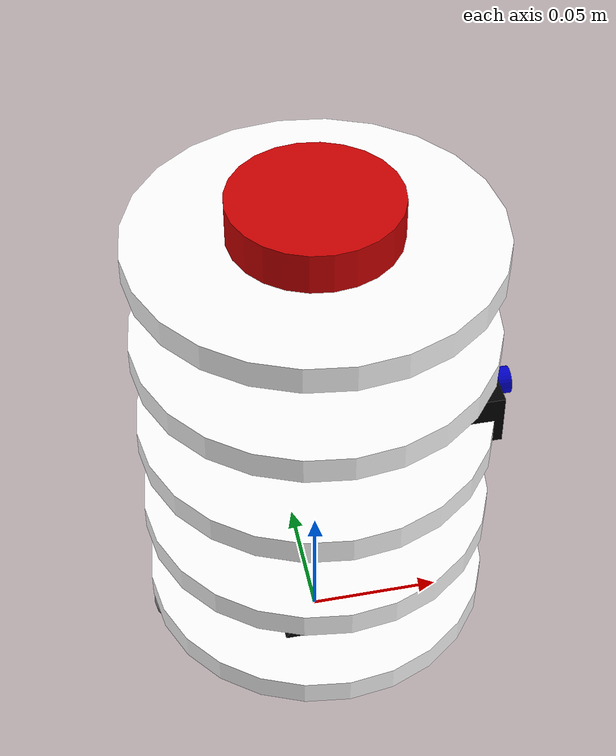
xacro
<?xml version="1.0"?>
<robot name="bumpy7_robot" xmlns:xacro="http://ros.org/wiki/xacro">
  <!-- Add namespace parameter with default -->
  <xacro:arg name="namespace" default="bumpy7"/>
  <xacro:property name="ns" value="$(arg namespace)"/>

  <!-- Properties -->
  <xacro:property name="wheel_radius" value="0.022"/>
  <xacro:property name="wheel_length" value="0.01"/>
  <xacro:property name="wheel_separation" value="0.07"/>
  <xacro:property name="plate_radius" value="0.065"/>
  <xacro:property name="plate_height" value="0.01"/>
  <xacro:property name="plate_spacing" value="0.04"/>
  <xacro:property name="caster_radius" value="0.01"/>

  <!-- Materials for visualization -->
  <material name="white">
    <color rgba="1 1 1 1"/>
  </material>
  <material name="black">
    <color rgba="0 0 0 1"/>
  </material>
  <material name="gray">
    <color rgba="0.5 0.5 0.5 1"/>
  </material>
  <material name="red">
    <color rgba="0.8 0 0 1"/>
  </material>
  <material name="blue">
    <color rgba="0 0 0.8 1"/>
  </material>

  <!-- Wheel macro -->
  <xacro:macro name="wheel" params="prefix reflect">
    <link name="${ns}/${prefix}_wheel">
      <visual>
        <geometry>
          <cylinder length="${wheel_length}" radius="${wheel_radius}"/>
        </geometry>
        <material name="black"/>
        <origin xyz="0 0 0" rpy="${pi/2} 0 0"/>
      </visual>
      <collision>
        <geometry>
          <cylinder length="${wheel_length}" radius="${wheel_radius}"/>
        </geometry>
        <origin xyz="0 0 0" rpy="${pi/2} 0 0"/>
      </collision>
      <inertial>
        <mass value="0.1"/>
        <inertia ixx="0.00003" ixy="0" ixz="0" iyy="0.00003" iyz="0" izz="0.00005"/>
      </inertial>
    </link>

    <joint name="${ns}/${prefix}_wheel_joint" type="continuous">
      <parent link="${ns}/base_link"/>
      <child link="${ns}/${prefix}_wheel"/>
      <origin xyz="0 ${reflect * wheel_separation/2} -0.005" rpy="0 0 0"/>
      <axis xyz="0 1 0"/>
    </joint>
  </xacro:macro>

  <!-- Caster wheel macro -->
  <xacro:macro name="caster" params="prefix position_x">
    <link name="${ns}/${prefix}_caster">
      <visual>
        <geometry>
          <sphere radius="${caster_radius}"/>
        </geometry>
        <material name="gray"/>
      </visual>
      <collision>
        <geometry>
          <sphere radius="${caster_radius}"/>
        </geometry>
      </collision>
      <inertial>
        <mass value="0.05"/>
        <inertia ixx="0.000002" ixy="0" ixz="0" iyy="0.000002" iyz="0" izz="0.000002"/>
      </inertial>
    </link>

    <joint name="${ns}/${prefix}_caster_joint" type="fixed">
      <parent link="${ns}/base_link"/>
      <child link="${ns}/${prefix}_caster"/>
      <origin xyz="${position_x} 0 -0.01" rpy="0 0 0"/>
    </joint>
  </xacro:macro>

  <!-- Plate macro -->
  <xacro:macro name="plate" params="number parent offset">
    <link name="${ns}/plate_${number}">
      <visual>
        <geometry>
          <cylinder length="${plate_height}" radius="${plate_radius}"/>
        </geometry>
        <material name="white"/>
      </visual>
      <collision>
        <geometry>
          <cylinder length="${plate_height}" radius="${plate_radius}"/>
        </geometry>
      </collision>
      <inertial>
        <mass value="0.3"/>
        <inertia ixx="0.0006" ixy="0" ixz="0" iyy="0.0006" iyz="0" izz="0.0012"/>
      </inertial>
    </link>

    <joint name="${ns}/plate_${number}_joint" type="fixed">
      <parent link="${parent}"/>
      <child link="${ns}/plate_${number}"/>
      <origin xyz="0 0 ${offset}" rpy="0 0 0"/>
    </joint>
  </xacro:macro>

  <!-- Base Footprint -->
  <link name="${ns}/base_footprint">
    <visual>
      <geometry>
        <box size="0.001 0.001 0.001"/>
      </geometry>
      <material name="black"/>
    </visual>
    <collision>
      <geometry>
        <box size="0.001 0.001 0.001"/>
      </geometry>
    </collision>
    <inertial>
      <mass value="0.0001"/>
      <inertia ixx="0.0000001" ixy="0" ixz="0" iyy="0.0000001" iyz="0" izz="0.0000001"/>
    </inertial>
  </link>

  <joint name="${ns}/base_joint" type="fixed">
    <parent link="${ns}/base_footprint"/>
    <child link="${ns}/base_link"/>
    <origin xyz="0 0 ${wheel_radius + 0.005}" rpy="0 0 0"/>
  </joint>

  <!-- Base plate (Bottom "bun") -->
  <link name="${ns}/base_link">
    <visual>
      <geometry>
        <cylinder length="${plate_height}" radius="${plate_radius}"/>
      </geometry>
      <material name="white"/>
    </visual>
    <collision>
      <geometry>
        <cylinder length="${plate_height}" radius="${plate_radius}"/>
      </geometry>
    </collision>
    <inertial>
      <mass value="0.5"/>
      <inertia ixx="0.0008" ixy="0" ixz="0" iyy="0.0008" iyz="0" izz="0.0015"/>
    </inertial>
  </link>

  <!-- Add wheels -->
  <xacro:wheel prefix="right" reflect="-1" />
  <xacro:wheel prefix="left" reflect="1" />

  <!-- Add caster wheels -->
  <xacro:caster prefix="front" position_x="0.055" />
  <xacro:caster prefix="rear" position_x="-0.055" />

  <!-- Add plates -->
  <xacro:plate number="1" parent="${ns}/base_link" offset="${plate_spacing}" />
  <xacro:plate number="2" parent="${ns}/plate_1" offset="${plate_spacing}" />
  <xacro:plate number="3" parent="${ns}/plate_2" offset="${plate_spacing}" />
  <xacro:plate number="4" parent="${ns}/plate_3" offset="${plate_spacing}" />

  <!-- Camera Link -->
  <link name="${ns}/camera_link">
    <visual>
      <geometry>
        <box size="0.03 0.04 0.02"/>
      </geometry>
      <material name="black"/>
    </visual>
    <collision>
      <geometry>
        <box size="0.03 0.04 0.02"/>
      </geometry>
    </collision>
    <inertial>
      <mass value="0.1"/>
      <inertia ixx="0.000017" ixy="0" ixz="0" iyy="0.000017" iyz="0" izz="0.000017"/>
    </inertial>
  </link>

  <!-- Camera Joint -->
  <joint name="${ns}/camera_joint" type="fixed">
    <parent link="${ns}/plate_2"/>
    <child link="${ns}/camera_link"/>
    <origin xyz="0.05 0 0.005" rpy="0 0 0"/>
  </joint>

  <!-- Camera Lens -->
  <link name="${ns}/camera_lens">
    <visual>
      <geometry>
        <cylinder length="0.005" radius="0.005"/>
      </geometry>
      <material name="blue"/>
    </visual>
  </link>

  <!-- Camera Lens Joint -->
  <joint name="${ns}/camera_lens_joint" type="fixed">
    <parent link="${ns}/camera_link"/>
    <child link="${ns}/camera_lens"/>
    <origin xyz="0.02 0 0" rpy="0 ${pi/2} 0"/>
  </joint>

  <!-- IMU Link -->
  <link name="${ns}/imu_link">
    <visual>
      <geometry>
        <box size="0.02 0.02 0.01"/>
      </geometry>
      <material name="gray"/>
    </visual>
    <collision>
      <geometry>
        <box size="0.02 0.02 0.01"/>
      </geometry>
    </collision>
    <inertial>
      <mass value="0.05"/>
      <inertia ixx="0.000004" ixy="0" ixz="0" iyy="0.000004" iyz="0" izz="0.000004"/>
    </inertial>
  </link>

  <!-- IMU Joint -->
  <joint name="${ns}/imu_joint" type="fixed">
    <parent link="${ns}/plate_3"/>
    <child link="${ns}/imu_link"/>
    <origin xyz="0 0 0.005" rpy="0 0 0"/>
  </joint>

 <!-- Lidar Link -->
  <link name="${ns}/lidar_link">
    <visual>
      <geometry>
        <cylinder length="0.02" radius="0.03"/>
      </geometry>
      <material name="red"/>
    </visual>
    <collision>
      <geometry>
        <cylinder length="0.02" radius="0.03"/>
      </geometry>
    </collision>
    <inertial>
      <mass value="0.1"/>
      <inertia ixx="0.000017" ixy="0" ixz="0" iyy="0.000017" iyz="0" izz="0.000017"/>
    </inertial>
  </link>

  <!-- Lidar Joint -->
  <joint name="${ns}/lidar_joint" type="fixed">
    <parent link="${ns}/plate_4"/>
    <child link="${ns}/lidar_link"/>
    <origin xyz="0 0 0.01" rpy="0 0 0"/>
  </joint>

</robot>
